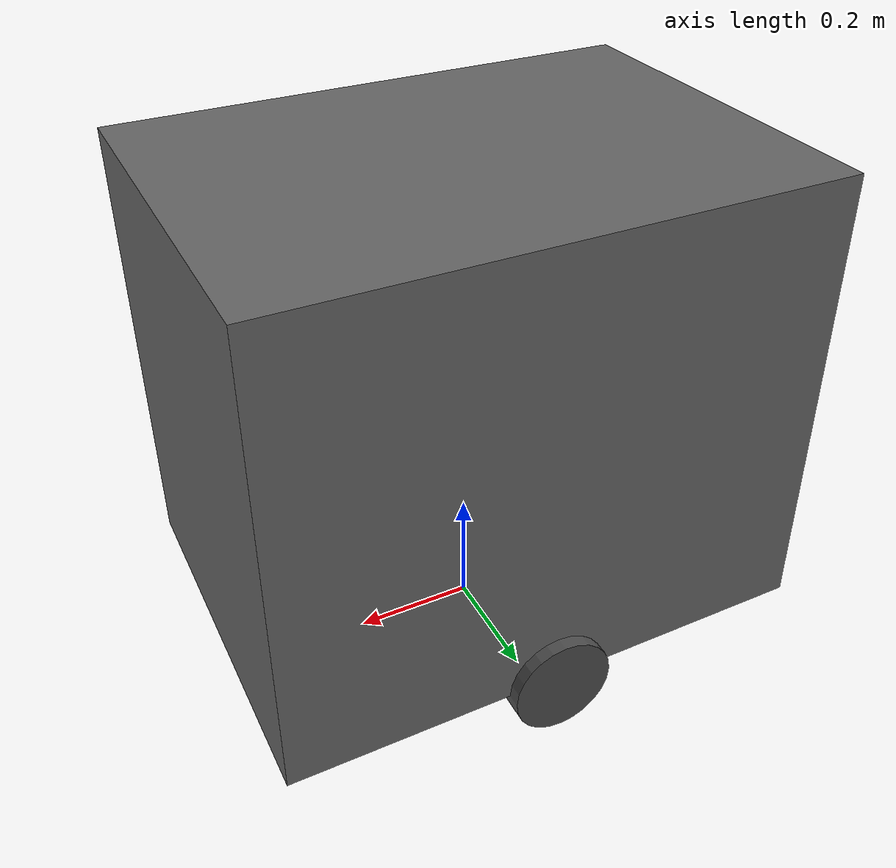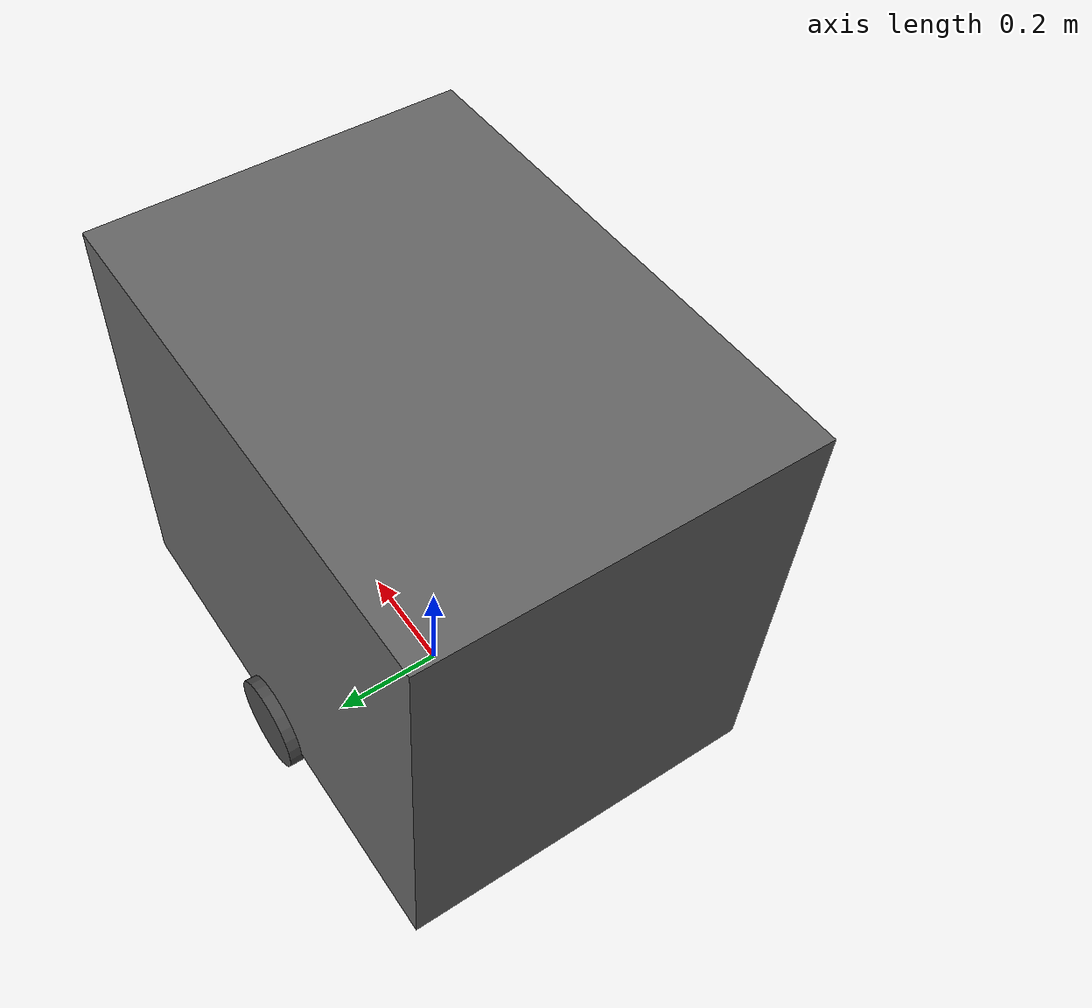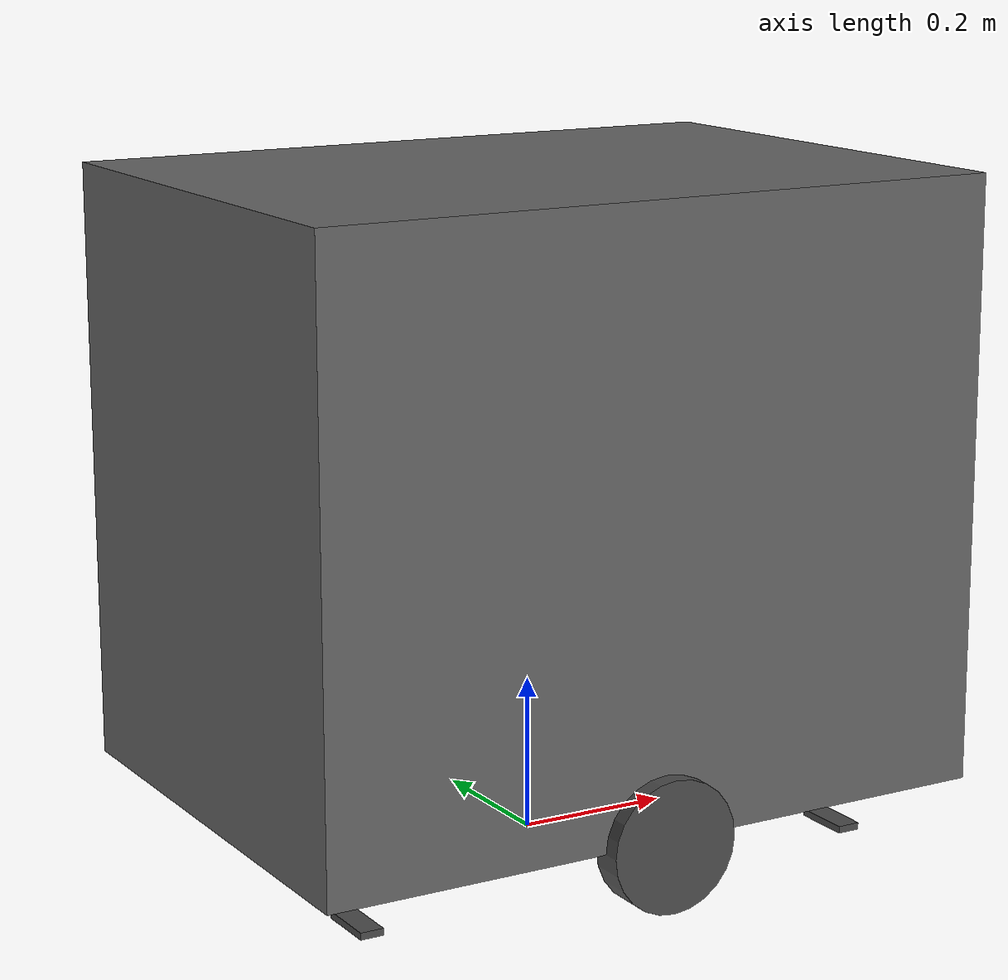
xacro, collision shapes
<?xml version="1.0"?>
<robot name="moving_base" xmlns:xacro="http://ros.org/wiki/xacro">

    <xacro:include filename="$(find ur_e_description)/urdf/properties.xacro" />
    <xacro:include filename="$(find ur_e_description)/urdf/moving_base.gazebo.xacro" />

    <!-- testing adding a velodyne laser  -->
    <!-- VLP-16 -->
    <!-- velodyne -->
    <!-- velodyne -->

    <!-- testing adding a sensor camera -->

    <link name="base_footprint" />

    <joint name="base_joint" type="fixed">
        <parent link="base_footprint" />
        <child link="base_link_mb" />
        <origin xyz="0 0 0.010" rpy="0 0 0" />
    </joint>

    <link name="base_link_mb">
        <visual>
            <origin xyz="0 0 0.410" rpy="0 0 0" />
            <geometry>
                <box size="0.900 0.600 0.770" />
            </geometry>
            <material name="light_black" />
        </visual>

        <collision>
            <origin xyz="0 0 0.459" rpy="0 0 0" />
            <geometry>
                <box size="0.900 0.650 0.770" />
            </geometry>
        </collision>

        <inertial>
            <origin xyz="0 0 0" rpy="0 0 0" />
            <mass value="25" />
            <inertia ixx="8.7002718e-03" ixy="-4.7576583e-05" ixz="1.1160499e-04"
                iyy="8.6195418e-03" iyz="-3.5422299e-06"
                izz="1.4612727e-02" />
        </inertial>
    </link>

    <joint name="wheel_left_joint" type="continuous">
        <parent link="base_link_mb" />
        <child link="wheel_left_link" />
        <origin xyz="0.0 0.325 0.074" rpy="-1.57 0 0" />
        <axis xyz="0 0 1" />
    </joint>

    <link name="wheel_left_link">
        <visual>
            <origin xyz="0 0 0" rpy="-1.57 0 0" />
            <geometry>
                <mesh filename="package://ur_e_description/meshes/wheels/left_tire.stl" scale="0.0025 0.0025 0.0025" />
            </geometry>
            <material name="dark" />
        </visual>

        <collision>
            <origin xyz="0 0 0" rpy="0 0 0" />
            <geometry>
                <cylinder length="0.044" radius="0.084" />
            </geometry>
        </collision>

        <inertial>
            <origin xyz="0 0 0" />
            <mass value="2.8498940e-02" />
            <inertia ixx="1.1175580e-05" ixy="-4.2369783e-11" ixz="-5.9381719e-09"
                iyy="1.1192413e-05" iyz="-1.4400107e-11"
                izz="2.0712558e-05" />
        </inertial>
    </link>

    <joint name="wheel_right_joint" type="continuous">
        <parent link="base_link_mb" />
        <child link="wheel_right_link" />
        <origin xyz="0.0 -0.325 0.074" rpy="-1.57 0 0" />
        <axis xyz="0 0 1" />
    </joint>

    <link name="wheel_right_link">
        <visual>
            <origin xyz="0 0 0" rpy="1.57 0 0" />
            <geometry>
                <mesh filename="package://ur_e_description/meshes/wheels/left_tire.stl" scale="0.0025 0.0025 0.0025" />
            </geometry>
            <material name="dark" />
        </visual>

        <collision>
            <origin xyz="0 0 0" rpy="0 0 0" />
            <geometry>
                <cylinder length="0.044" radius="0.084" />
            </geometry>
        </collision>

        <inertial>
            <origin xyz="0 0 0" />
            <mass value="2.8498940e-02" />
            <inertia ixx="1.1175580e-05" ixy="-4.2369783e-11" ixz="-5.9381719e-09"
                iyy="1.1192413e-05" iyz="-1.4400107e-11"
                izz="2.0712558e-05" />
        </inertial>
    </link>

    <!-- back caster -->
    <joint name="caster_back_right_joint" type="fixed">
        <parent link="base_link_mb" />
        <child link="caster_back_right_link" />
        <origin xyz="-0.345 -0.190 -0.004" rpy="-1.57 0 0" />
    </joint>

    <link name="caster_back_right_link">
        <visual>
            <origin xyz="0 -0.084 0" rpy="1.57 0 0" />
            <geometry>
                <mesh filename="package://ur_e_description/meshes/wheels/left_tire.stl" scale="0.0025 0.0025 0.0025" />
            </geometry>
            <material name="dark" />
        </visual>

        <collision>
            <origin xyz="0 0.001 0" rpy="0 0 0" />
            <geometry>
                <box size="0.030 0.009 0.078" />
            </geometry>
        </collision>

        <inertial>
            <origin xyz="0 0 0" />
            <mass value="0.005" />
            <inertia ixx="0.001" ixy="0.0" ixz="0.0"
                iyy="0.001" iyz="0.0"
                izz="0.001" />
        </inertial>
    </link>

    <joint name="caster_back_left_joint" type="fixed">
        <parent link="base_link_mb" />
        <child link="caster_back_left_link" />
        <origin xyz="-0.345 0.190 -0.004" rpy="-1.57 0 0" />
    </joint>

    <link name="caster_back_left_link">
        <visual>
            <origin xyz="0 -0.084 0" rpy="-1.57 0 0" />
            <geometry>
                <mesh filename="package://ur_e_description/meshes/wheels/left_tire.stl" scale="0.0025 0.0025 0.0025" />
            </geometry>
            <material name="dark" />
        </visual>

        <collision>
            <origin xyz="0 0.001 0" rpy="0 0 0" />
            <geometry>
                <box size="0.030 0.009 0.078" />
            </geometry>
        </collision>

        <inertial>
            <origin xyz="0 0 0" />
            <mass value="0.005" />
            <inertia ixx="0.001" ixy="0.0" ixz="0.0"
                iyy="0.001" iyz="0.0"
                izz="0.001" />
        </inertial>
    </link>
    <!-- back caster -->

    <!-- front caster -->
    <joint name="caster_front_right_joint" type="fixed">
        <parent link="base_link_mb" />
        <child link="caster_front_right_link" />
        <origin xyz="0.345 -0.190 -0.004" rpy="-1.57 0 0" />
    </joint>

    <link name="caster_front_right_link">
        <visual>
            <origin xyz="0 -0.084 0" rpy="1.57 0 0" />
            <geometry>
                <mesh filename="package://ur_e_description/meshes/wheels/left_tire.stl" scale="0.0025 0.0025 0.0025" />
            </geometry>
            <material name="dark" />
        </visual>

        <collision>
            <origin xyz="0 0.001 0" rpy="0 0 0" />
            <geometry>
                <box size="0.030 0.009 0.078" />
            </geometry>
        </collision>

        <inertial>
            <origin xyz="0 0 0" />
            <mass value="0.005" />
            <inertia ixx="0.001" ixy="0.0" ixz="0.0"
                iyy="0.001" iyz="0.0"
                izz="0.001" />
        </inertial>
    </link>

    <joint name="caster_front_left_joint" type="fixed">
        <parent link="base_link_mb" />
        <child link="caster_front_left_link" />
        <origin xyz="0.345 0.190 -0.004" rpy="-1.57 0 0" />
    </joint>

    <link name="caster_front_left_link">
        <visual>
            <origin xyz="0 -0.084 0" rpy="-1.57 0 0" />
            <geometry>
                <mesh filename="package://ur_e_description/meshes/wheels/left_tire.stl" scale="0.0025 0.0025 0.0025" />
            </geometry>
            <material name="dark" />
        </visual>

        <collision>
            <origin xyz="0 0.001 0" rpy="0 0 0" />
            <geometry>
                <box size="0.030 0.009 0.078" />
            </geometry>
        </collision>

        <inertial>
            <origin xyz="0 0 0" />
            <mass value="0.005" />
            <inertia ixx="0.001" ixy="0.0" ixz="0.0"
                iyy="0.001" iyz="0.0"
                izz="0.001" />
        </inertial>
    </link>
    <!-- front caster -->

    <joint name="imu_joint" type="fixed">
        <parent link="base_link_mb" />
        <child link="imu_link" />
        <origin xyz="0.0 0 0.068" rpy="0 0 0" />
    </joint>

    <link name="imu_link" />

</robot>

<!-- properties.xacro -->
<robot name="properties" xmlns:xacro="http://ros.org/wiki/xacro">

    <material name="grey">
        <color rgba="0.7 0.7 0.7 1.0" />
    </material>

    <material name="dark">
        <color rgba="0.3 0.3 0.3 1.0" />
    </material>

    <material name="light_black">
        <color rgba="0.4 0.4 0.4 1.0" />
    </material>

</robot>
